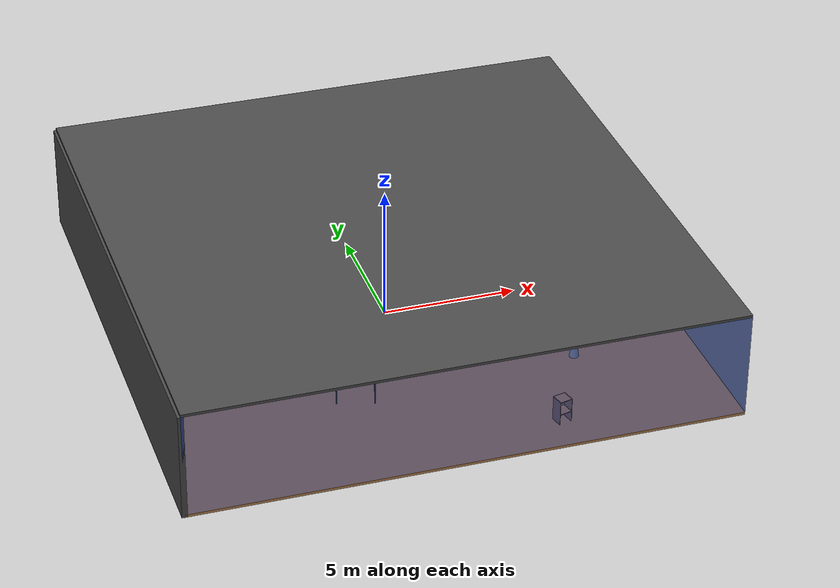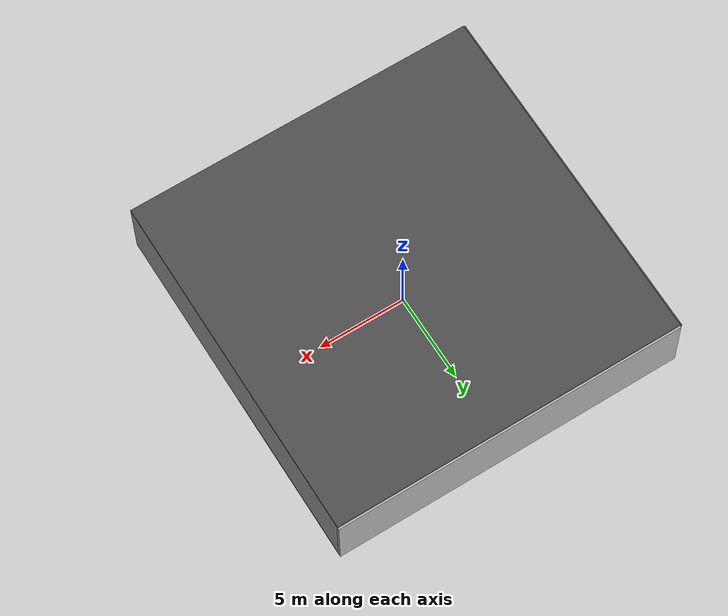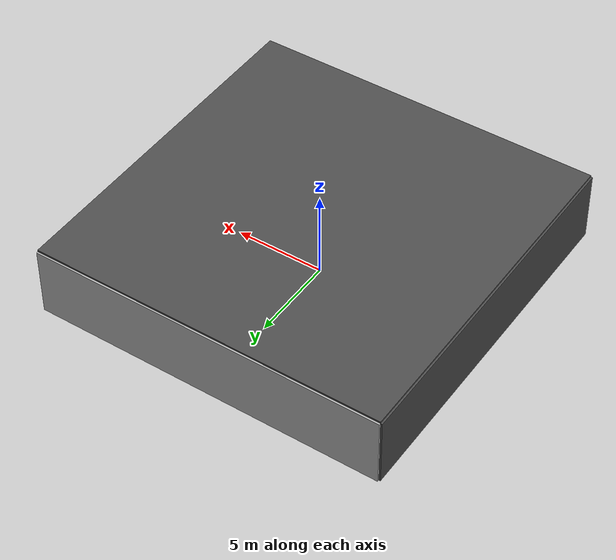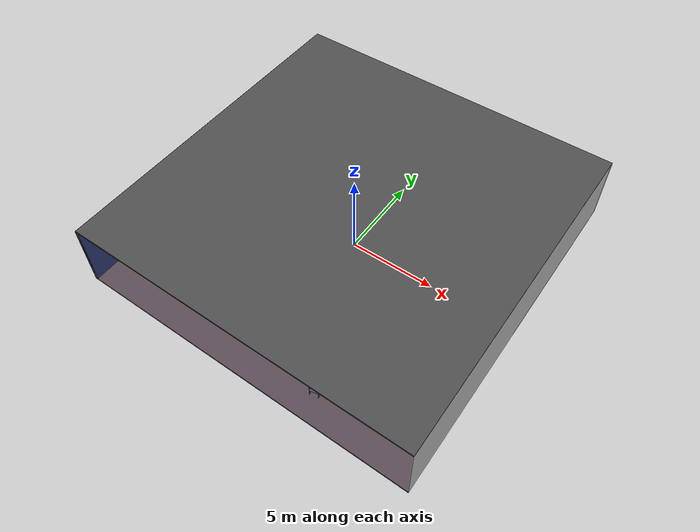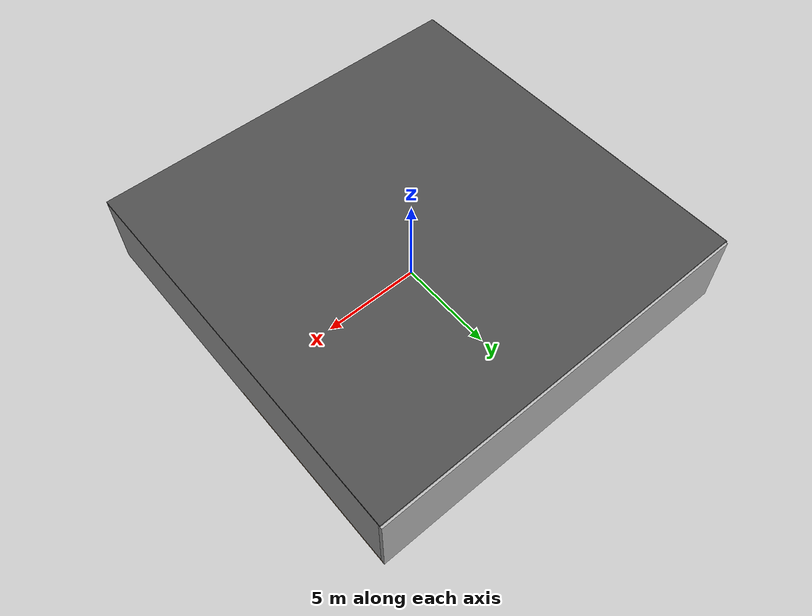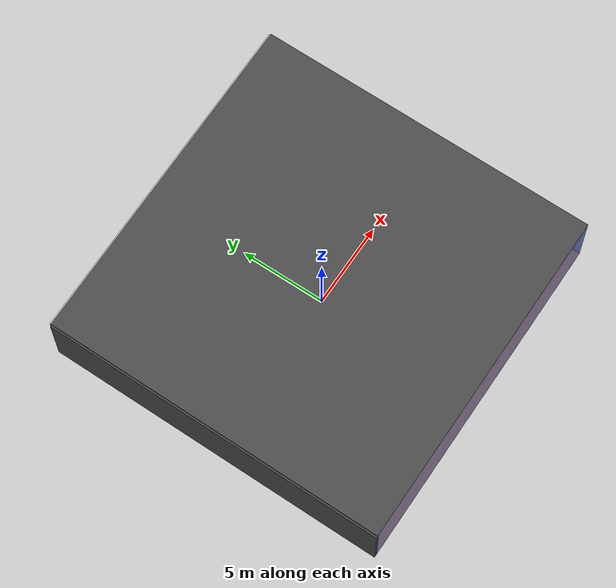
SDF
<sdf version="1.4">
 <world name="default">
  <physics type="ode">
   <max_step_size>0.001</max_step_size>
   <real_time_factor>1</real_time_factor>
   <real_time_update_rate>1000</real_time_update_rate>
   <gravity>0 0 -9.8</gravity>
  </physics>
  <scene><ambient>0.4 0.4 0.4 1</ambient><background>0.7 0.7 0.7 1</background><shadows>1</shadows></scene>
  <model name="Surrounding">
   <static>1</static>
   <link name="Ceiling">
    <collision name="Ceiling_Collision"><geometry><box><size>20 20 0.1</size></box></geometry></collision>
    <visual name="Ceiling_Visual">
     <geometry><box><size>20 20 0.1</size></box></geometry>
     <material>
      <script><uri>file://media/materials/scripts/gazebo.material</uri><name>Gazebo/DarkGrey</name></script>
     </material>
    </visual>
    <pose>0 0 4.05 0 0 0</pose>
   </link>
   <link name="Wall_South">
    <collision name="Wall_South_Collision">
     <geometry><box><size>20 0 4</size></box></geometry>
     <pose>0 0 2 0 -0 0</pose>
    </collision>
    <visual name="Wall_South_Visual">
     <pose>0 0 2 0 -0 0</pose>
     <geometry><box><size>20 0 4</size></box></geometry>
     <material>
      <script><uri>file://media/materials/scripts/gazebo.material</uri><name>Gazebo/BlueTransparent</name></script>
     </material>
    </visual>
    <velocity_decay><linear>0</linear><angular>0</angular></velocity_decay>
    <pose>0 -10 0 0 -0 0</pose>
   </link>
   <link name="Wall_East">
    <collision name="Wall_21_Collision">
     <geometry><box><size>20 0 4</size></box></geometry>
     <pose>0 0 2 0 -0 0</pose>
    </collision>
    <visual name="Wall_21_Visual">
     <pose>0 0 2 0 -0 0</pose>
     <geometry><box><size>20 0 4</size></box></geometry>
     <material>
      <script><uri>file://media/materials/scripts/gazebo.material</uri><name>Gazebo/CloudySky</name></script>
     </material>
    </visual>
    <velocity_decay><linear>0</linear><angular>0</angular></velocity_decay>
    <pose>10 0 0 0 -0 1.5708</pose>
   </link>
   <link name="Wall_North">
    <collision name="Wall_22_Collision">
     <geometry><box><size>20 0.2 4</size></box></geometry>
     <pose>0 0 2 0 -0 0</pose>
    </collision>
    <visual name="Wall_22_Visual">
     <pose>0 0 2 0 -0 0</pose>
     <geometry><box><size>20 0.2 4</size></box></geometry>
     <material>
      <script><uri>file://media/materials/scripts/gazebo.material</uri><name>Gazebo/Pioneer2Body</name></script>
     </material>
    </visual>
    <velocity_decay><linear>0</linear><angular>0</angular></velocity_decay>
    <pose>0 10 0 0 -0 0</pose>
   </link>
   <link name="Wall_West">
    <collision name="Wall_23_Collision">
     <geometry><box><size>20 0.2 4</size></box></geometry>
     <pose>0 0 2 0 -0 0</pose>
    </collision>
    <visual name="Wall_23_Visual">
     <pose>0 0 2 0 -0 0</pose>
     <geometry><box><size>20 0.2 4</size></box></geometry>
     <material>
      <script><uri>file://media/materials/scripts/gazebo.material</uri><name>Gazebo/Road</name></script>
     </material>
    </visual>
    <velocity_decay><linear>0</linear><angular>0</angular></velocity_decay>
    <pose>-10 0 0 0 0 -1.5708</pose>
   </link>
   <link name="Ground_link">
    <collision name="collision">
     <pose>0 0 .05 0 -0 0</pose>
     <geometry><box><size>20 20 0.1</size></box></geometry>
    </collision>
    <visual name="visual">
     <pose>0 0 .05 0 -0 0</pose>
     <geometry><box><size>20 20 0.1</size></box></geometry>
     <material>
      <script><uri>file://media/materials/scripts/gazebo.material</uri><name>Gazebo/WoodFloor</name></script>
     </material>
    </visual>
   </link>
   <static>1</static>
  </model>
  <spherical_coordinates>
   <surface_model>EARTH_WGS84</surface_model>
   <latitude_deg>0</latitude_deg>
   <longitude_deg>0</longitude_deg>
   <elevation>0</elevation>
   <heading_deg>0</heading_deg>
  </spherical_coordinates>
  <light name="lightball_0" type="diffuse">
   <diffuse>0.8 0.8 0.8 1</diffuse>
   <specular>0.2 0.2 0.2 1</specular>
   <attenuation>
    <range>100</range>
    <constant>0.7</constant>
    <linear>0.01</linear>
    <quadratic>0.001</quadratic>
   </attenuation>
   <direction>-0.5 0.1 -0.9</direction>
   <pose>6.96898742008 -0.996776073397 3.47034818825 0 0 0</pose>
  </light>
  <light name="lightball_1" type="diffuse">
   <diffuse>0.8 0.8 0.8 1</diffuse>
   <specular>0.2 0.2 0.2 1</specular>
   <attenuation>
    <range>100</range>
    <constant>0.7</constant>
    <linear>0.01</linear>
    <quadratic>0.001</quadratic>
   </attenuation>
   <direction>-0.5 0.1 -0.9</direction>
   <pose>9.60468905841 1.47103147191 3.16533199977 0 0 0</pose>
  </light>
  <light name="lightball_2" type="diffuse">
   <diffuse>0.8 0.8 0.8 1</diffuse>
   <specular>0.2 0.2 0.2 1</specular>
   <attenuation>
    <range>100</range>
    <constant>0.7</constant>
    <linear>0.01</linear>
    <quadratic>0.001</quadratic>
   </attenuation>
   <direction>-0.5 0.1 -0.9</direction>
   <pose>7.73381744179 6.72192613033 1.99070523238 0 0 0</pose>
  </light>
  <light name="lightball_3" type="diffuse">
   <diffuse>0.8 0.8 0.8 1</diffuse>
   <specular>0.2 0.2 0.2 1</specular>
   <attenuation>
    <range>100</range>
    <constant>0.7</constant>
    <linear>0.01</linear>
    <quadratic>0.001</quadratic>
   </attenuation>
   <direction>-0.5 0.1 -0.9</direction>
   <pose>-0.524988732317 -4.18700614677 1.17154046756 0 0 0</pose>
  </light>
  <light name="lightball_4" type="diffuse">
   <diffuse>0.8 0.8 0.8 1</diffuse>
   <specular>0.2 0.2 0.2 1</specular>
   <attenuation>
    <range>100</range>
    <constant>0.7</constant>
    <linear>0.01</linear>
    <quadratic>0.001</quadratic>
   </attenuation>
   <direction>-0.5 0.1 -0.9</direction>
   <pose>1.66390858736 -1.48197487842 2.14205144485 0 0 0</pose>
  </light>
  <light name="lightball_5" type="diffuse">
   <diffuse>0.8 0.8 0.8 1</diffuse>
   <specular>0.2 0.2 0.2 1</specular>
   <attenuation>
    <range>100</range>
    <constant>0.7</constant>
    <linear>0.01</linear>
    <quadratic>0.001</quadratic>
   </attenuation>
   <direction>-0.5 0.1 -0.9</direction>
   <pose>6.16917216234 3.11542885458 0.89863036057 0 0 0</pose>
  </light>
  <light name="lightball_6" type="diffuse">
   <diffuse>0.8 0.8 0.8 1</diffuse>
   <specular>0.2 0.2 0.2 1</specular>
   <attenuation>
    <range>100</range>
    <constant>0.7</constant>
    <linear>0.01</linear>
    <quadratic>0.001</quadratic>
   </attenuation>
   <direction>-0.5 0.1 -0.9</direction>
   <pose>1.78617406114 -0.127274884267 2.25193811076 0 0 0</pose>
  </light>
  <light name="lightball_7" type="diffuse">
   <diffuse>0.8 0.8 0.8 1</diffuse>
   <specular>0.2 0.2 0.2 1</specular>
   <attenuation>
    <range>100</range>
    <constant>0.7</constant>
    <linear>0.01</linear>
    <quadratic>0.001</quadratic>
   </attenuation>
   <direction>-0.5 0.1 -0.9</direction>
   <pose>7.27176298522 0.281904363388 3.75505067239 0 0 0</pose>
  </light>
  <include><uri>model://cabinet</uri><pose>-7.77922084954 -1.83044003546 0 0 0 2.57881987062</pose></include>
  <include><uri>model://table</uri><pose>-5.07835717342 1.54110424064 0 0 0 0.965511030621</pose></include>
  <include><uri>model://table</uri><pose>-2.66583409266 -5.12322062778 0 0 0 2.87712365861</pose></include>
  <include>
   <uri>model://robocup_3Dsim_goal</uri>
   <pose>0.832750683262 7.61897057722 0 0 0 2.68526339493</pose>
  </include>
  <include><uri>model://cabinet</uri><pose>3.76734791401 -8.54309037304 0 0 0 1.80731390598</pose></include>
  <include>
   <uri>model://construction_cone</uri>
   <pose>5.57427871279 -4.91598858748 0 0 0 1.50033843515</pose>
  </include>
  <include><uri>model://cabinet</uri><pose>5.2390631124 2.59416220384 0 0 0 2.21144018879</pose></include>
 </world>
</sdf>

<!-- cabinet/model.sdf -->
<sdf version="1.5">
  <model name="cabinet">
    <static>true</static>
    <link name="cabinet_bottom_plate">
      <inertial>
        <pose>0 0 -1 0 0 0</pose>
        <inertia>
          <ixx>2.050000</ixx>
          <ixy>0</ixy>
          <ixz>0</ixz>
          <iyy>2.050000</iyy>
          <iyz>0</iyz>
          <izz>2.050000</izz>
        </inertia>
        <mass>25.000000</mass>
      </inertial>
      <collision name="cabinet_bottom_plate_geom">
        <pose>0 0 0.010000 0 0 0</pose>
        <geometry>
          <box>
            <size>0.450000 0.450000 0.020000</size>
          </box>
        </geometry>
      </collision>
      <visual name="cabinet_bottom_plate_geom_visual">
        <pose>0 0 0.010000 0 0 0</pose>
        <geometry>
          <box>
            <size>0.450000 0.450000 0.020000</size>
          </box>
        </geometry>
        <material>
          <script>
            <uri>model://media/materials/scripts/gazebo.material</uri>
            <name>Gazebo/Wood</name>
          </script>
        </material>
      </visual>
      <collision name="cabinet_bottom_plate_geom_cabinet_back_plate">
        <pose>0.235000 0 0.510000 0 0 0</pose>
        <geometry>
          <box>
            <size>0.020000 0.450000 1.020000</size>
          </box>
        </geometry>
      </collision>
      <visual name="cabinet_bottom_plate_geom_cabinet_back_plate_visual">
        <pose>0.235000 0 0.510000 0 0 0</pose>
        <geometry>
          <box>
            <size>0.020000 0.450000 1.020000</size>
          </box>
        </geometry>
        <material>
          <script>
            <uri>model://media/materials/scripts/gazebo.material</uri>
            <name>Gazebo/Wood</name>
          </script>
        </material>
      </visual>
      <collision name="cabinet_bottom_plate_geom_cabinet_left_plate">
        <pose>0 0.235000 0.510000 0 0 0</pose>
        <geometry>
          <box>
            <size>0.450000 0.020000 1.020000</size>
          </box>
        </geometry>
      </collision>
      <visual name="cabinet_bottom_plate_geom_cabinet_left_plate_visual">
        <pose>0 0.235000 0.510000 0 0 0</pose>
        <geometry>
          <box>
            <size>0.450000 0.020000 1.020000</size>
          </box>
        </geometry>
        <material>
          <script>
            <uri>model://media/materials/scripts/gazebo.material</uri>
            <name>Gazebo/Wood</name>
          </script>
        </material>
      </visual>
      <collision name="cabinet_bottom_plate_geom_cabinet_middle_plate">
        <pose>0 0 0.510000 0 0 0</pose>
        <geometry>
          <box>
            <size>0.450000 0.450000 0.020000</size>
          </box>
        </geometry>
      </collision>
      <visual name="cabinet_bottom_plate_geom_cabinet_middle_plate_visual">
        <pose>0 0 0.510000 0 0 0</pose>
        <geometry>
          <box>
            <size>0.450000 0.450000 0.020000</size>
          </box>
        </geometry>
        <material>
          <script>
            <uri>model://media/materials/scripts/gazebo.material</uri>
            <name>Gazebo/Wood</name>
          </script>
        </material>
      </visual>
      <collision name="cabinet_bottom_plate_geom_cabinet_right_plate">
        <pose>0 -0.235000 0.510000 0 0 0</pose>
        <geometry>
          <box>
            <size>0.450000 0.020000 1.020000</size>
          </box>
        </geometry>
      </collision>
      <visual name="cabinet_bottom_plate_geom_cabinet_right_plate_visual">
        <pose>0 -0.235000 0.510000 0 0 0</pose>
        <geometry>
          <box>
            <size>0.450000 0.020000 1.020000</size>
          </box>
        </geometry>
        <material>
          <script>
            <uri>model://media/materials/scripts/gazebo.material</uri>
            <name>Gazebo/Wood</name>
          </script>
        </material>
      </visual>
      <collision name="cabinet_bottom_plate_geom_cabinet_top_plate">
        <pose>0 0 1.010000 0 0 0</pose>
        <geometry>
          <box>
            <size>0.450000 0.450000 0.020000</size>
          </box>
        </geometry>
      </collision>
      <visual name="cabinet_bottom_plate_geom_cabinet_top_plate_visual">
        <pose>0 0 1.010000 0 0 0</pose>
        <geometry>
          <box>
            <size>0.450000 0.450000 0.020000</size>
          </box>
        </geometry>
        <material>
          <script>
            <uri>model://media/materials/scripts/gazebo.material</uri>
            <name>Gazebo/Wood</name>
          </script>
        </material>
      </visual>
    </link>
  </model>
</sdf>

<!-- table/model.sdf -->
<sdf version="1.5">
  <model name="table">
    <static>true</static>
    <link name="link">
      <collision name="surface">
        <pose>0 0 1.0 0 0 0</pose>
        <geometry>
          <box>
            <size>1.5 0.8 0.03</size>
          </box>
        </geometry>
        <surface>
          <friction>
            <ode>
              <mu>0.6</mu>
              <mu2>0.6</mu2>
            </ode>
          </friction>
        </surface>
      </collision>
      <visual name="visual1">
        <pose>0 0 1.0 0 0 0</pose>
        <geometry>
          <box>
            <size>1.5 0.8 0.03</size>
          </box>
        </geometry>
        <material>
          <script>
            <uri>model://media/materials/scripts/gazebo.material</uri>
            <name>Gazebo/Wood</name>
          </script>
        </material>
      </visual>
      <collision name="front_left_leg">
        <pose>0.68 0.38 0.5 0 0 0</pose>
        <geometry>
          <cylinder>
            <radius>0.02</radius>
            <length>1.0</length>
          </cylinder>
        </geometry>
      </collision>
      <visual name="front_left_leg">
        <pose>0.68 0.38 0.5 0 0 0</pose>
        <geometry>
          <cylinder>
            <radius>0.02</radius>
            <length>1.0</length>
          </cylinder>
        </geometry>
        <material>
          <script>
            <uri>model://media/materials/scripts/gazebo.material</uri>
            <name>Gazebo/Grey</name>
          </script>
        </material>
      </visual>
      <collision name="front_right_leg">
        <pose>0.68 -0.38 0.5 0 0 0</pose>
        <geometry>
          <cylinder>
            <radius>0.02</radius>
            <length>1.0</length>
          </cylinder>
        </geometry>
      </collision>
      <visual name="front_right_leg">
        <pose>0.68 -0.38 0.5 0 0 0</pose>
        <geometry>
          <cylinder>
            <radius>0.02</radius>
            <length>1.0</length>
          </cylinder>
        </geometry>
        <material>
          <script>
            <uri>model://media/materials/scripts/gazebo.material</uri>
            <name>Gazebo/Grey</name>
          </script>
        </material>
      </visual>
      <collision name="back_right_leg">
        <pose>-0.68 -0.38 0.5 0 0 0</pose>
        <geometry>
          <cylinder>
            <radius>0.02</radius>
            <length>1.0</length>
          </cylinder>
        </geometry>
      </collision>
      <visual name="back_right_leg">
        <pose>-0.68 -0.38 0.5 0 0 0</pose>
        <geometry>
          <cylinder>
            <radius>0.02</radius>
            <length>1.0</length>
          </cylinder>
        </geometry>
        <material>
          <script>
            <uri>model://media/materials/scripts/gazebo.material</uri>
            <name>Gazebo/Grey</name>
          </script>
        </material>
      </visual>
      <collision name="back_left_leg">
        <pose>-0.68 0.38 0.5 0 0 0</pose>
        <geometry>
          <cylinder>
            <radius>0.02</radius>
            <length>1.0</length>
          </cylinder>
        </geometry>
      </collision>
      <visual name="back_left_leg">
        <pose>-0.68 0.38 0.5 0 0 0</pose>
        <geometry>
          <cylinder>
            <radius>0.02</radius>
            <length>1.0</length>
          </cylinder>
        </geometry>
        <material>
          <script>
            <uri>model://media/materials/scripts/gazebo.material</uri>
            <name>Gazebo/Grey</name>
          </script>
        </material>
      </visual>
    </link>
  </model>
</sdf>

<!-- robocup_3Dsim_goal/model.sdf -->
<sdf version="1.5">
  <model name="robocup_3d_goal">
    <static>true</static>
    <link name="left_post">
      <pose>0 1.05 0.45 0 0 0</pose>
      <collision name="collision">
        <geometry>
          <cylinder>
            <radius>0.05</radius>
            <length>0.9</length>
          </cylinder>
        </geometry>
      </collision>
      <visual name="visual">
        <geometry>
          <cylinder>
            <radius>0.05</radius>
            <length>0.9</length>
          </cylinder>
        </geometry>
        <material>
          <script>
            <uri>file://media/materials/scripts/gazebo.material</uri>
            <name>Gazebo/ZincYellow</name>
          </script>
        </material>
      </visual>
    </link>
    <link name="left_support_horiz_lower">
      <pose>0.30 1.05 0.01 0 0 0</pose>
      <collision name="collision">
        <geometry>
          <box>
            <size>0.50 0.02 0.02</size>
          </box>
        </geometry>
      </collision>
      <visual name="visual">
        <geometry>
          <box>
            <size>0.50 0.02 0.02</size>
          </box>
        </geometry>
        <material>
          <script>
            <uri>file://media/materials/scripts/gazebo.material</uri>
            <name>Gazebo/White</name>
          </script>
        </material>
      </visual>
    </link>
    <link name="left_support_horiz_upper">
      <pose>0.30 1.05 0.79 0 0 0</pose>
      <collision name="collision">
        <geometry>
          <box>
            <size>0.50 0.02 0.02</size>
          </box>
        </geometry>
      </collision>
      <visual name="visual">
        <geometry>
          <box>
            <size>0.50 0.02 0.02</size>
          </box>
        </geometry>
        <material>
          <script>
            <uri>file://media/materials/scripts/gazebo.material</uri>
            <name>Gazebo/White</name>
          </script>
        </material>
      </visual>
    </link>
    <link name="left_support_vertical">
      <pose>0.56 1.05 0.4 0 1.5708 0</pose>
      <collision name="collision">
        <geometry>
          <box>
            <size>0.80 0.02 0.02</size>
          </box>
        </geometry>
      </collision>
      <visual name="visual">
        <geometry>
          <box>
            <size>0.80 0.02 0.02</size>
          </box>
        </geometry>
        <material>
          <script>
            <uri>file://media/materials/scripts/gazebo.material</uri>
            <name>Gazebo/White</name>
          </script>
        </material>
      </visual>
    </link>
    <link name="right_support_horiz_lower">
      <pose>0.30 -1.05 0.01 0 0 0</pose>
      <collision name="collision">
        <geometry>
          <box>
            <size>0.50 0.02 0.02</size>
          </box>
        </geometry>
      </collision>
      <visual name="visual">
        <geometry>
          <box>
            <size>0.50 0.02 0.02</size>
          </box>
        </geometry>
        <material>
          <script>
            <uri>file://media/materials/scripts/gazebo.material</uri>
            <name>Gazebo/White</name>
          </script>
        </material>
      </visual>
    </link>
    <link name="right_support_horiz_upper">
      <pose>0.30 -1.05 0.79 0 0 0</pose>
      <collision name="collision">
        <geometry>
          <box>
            <size>0.50 0.02 0.02</size>
          </box>
        </geometry>
      </collision>
      <visual name="visual">
        <geometry>
          <box>
            <size>0.50 0.02 0.02</size>
          </box>
        </geometry>
        <material>
          <script>
            <uri>file://media/materials/scripts/gazebo.material</uri>
            <name>Gazebo/White</name>
          </script>
        </material>
      </visual>
    </link>
    <link name="right_support_vertical">
      <pose>0.56 -1.05 0.4 0 1.5708 0</pose>
      <collision name="collision">
        <geometry>
          <box>
            <size>0.80 0.02 0.02</size>
          </box>
        </geometry>
      </collision>
      <visual name="visual">
        <geometry>
          <box>
            <size>0.80 0.02 0.02</size>
          </box>
        </geometry>
        <material>
          <script>
            <uri>file://media/materials/scripts/gazebo.material</uri>
            <name>Gazebo/White</name>
          </script>
        </material>
      </visual>
    </link>
    <link name="center_support_horiz_lower">
      <pose>0.56 0 0.01 0 1.5708 0</pose>
      <collision name="collision">
        <geometry>
          <box>
            <size>0.02 2.08 0.02</size>
          </box>
        </geometry>
      </collision>
      <visual name="visual">
        <geometry>
          <box>
            <size>0.02 2.08 0.02</size>
          </box>
        </geometry>
        <material>
          <script>
            <uri>file://media/materials/scripts/gazebo.material</uri>
            <name>Gazebo/White</name>
          </script>
        </material>
      </visual>
    </link>
    <link name="center_support_horiz_upper">
      <pose>0.56 0 0.79 0 1.5708 0</pose>
      <collision name="collision">
        <geometry>
          <box>
            <size>0.02 2.08 0.02</size>
          </box>
        </geometry>
      </collision>
      <visual name="visual">
        <geometry>
          <box>
            <size>0.02 2.08 0.02</size>
          </box>
        </geometry>
        <material>
          <script>
            <uri>file://media/materials/scripts/gazebo.material</uri>
            <name>Gazebo/White</name>
          </script>
        </material>
      </visual>
    </link>
    <link name="right_post">
      <pose>0 -1.05 0.45 0 0 0</pose>
      <collision name="collision">
        <geometry>
          <cylinder>
            <radius>0.05</radius>
            <length>0.9</length>
          </cylinder>
        </geometry>
      </collision>
      <visual name="visual">
        <geometry>
          <cylinder>
            <radius>0.05</radius>
            <length>0.9</length>
          </cylinder>
        </geometry>
        <material>
          <script>
            <uri>file://media/materials/scripts/gazebo.material</uri>
            <name>Gazebo/ZincYellow</name>
          </script>
        </material>
      </visual>
    </link>
    <link name="crossbar">
      <pose>0 0 0.85 1.57 1.57 0</pose>
      <collision name="collision">
        <geometry>
          <cylinder>
            <radius>0.05</radius>
            <length>2.0</length>
          </cylinder>
        </geometry>
      </collision>
      <visual name="visual">
        <geometry>
          <cylinder>
            <radius>0.05</radius>
            <length>2.0</length>
          </cylinder>
        </geometry>
        <material>
          <script>
            <uri>file://media/materials/scripts/gazebo.material</uri>
            <name>Gazebo/ZincYellow</name>
          </script>
        </material>
      </visual>
    </link>
    <link name="center_net">
      <pose>0.56 0 0.40 0 0 0</pose>
      <collision name="collision">
        <geometry>
          <box>
            <size>0.01 2.1 0.80</size>
          </box>
        </geometry>
      </collision>
      <visual name="visual">
        <geometry>
          <box>
            <size>0.01 2.1 0.80</size>
          </box>
        </geometry>
        <material>
          <script>
            <uri>model://../model_source/models/robocup09_spl_field/materials/scripts/</uri>
            <uri>model://../model_source/models/robocup09_spl_field/materials/textures/</uri>
            <name>RoboCup/Net</name>
          </script>
        </material>
      </visual>
    </link>
    <link name="left_net">
      <pose>0.30 1.05 0.40 0 0 0</pose>
      <collision name="collision">
        <geometry>
          <box>
            <size>0.50 0.01 0.76</size>
          </box>
        </geometry>
      </collision>
      <visual name="visual">
        <geometry>
          <box>
            <size>0.50 0.01 0.76</size>
          </box>
        </geometry>
        <material>
          <script>
            <uri>model://../model_source/models/robocup09_spl_field/materials/scripts/</uri>
            <uri>model://../model_source/models/robocup09_spl_field/materials/textures/</uri>
            <name>RoboCup/Net</name>
          </script>
        </material>
      </visual>
    </link>
    <link name="right_net">
      <pose>0.30 -1.05 0.40 0 0 0</pose>
      <collision name="collision">
        <geometry>
          <box>
            <size>0.50 0.01 0.76</size>
          </box>
        </geometry>
      </collision>
      <visual name="visual">
        <geometry>
          <box>
            <size>0.50 0.01 0.76</size>
          </box>
        </geometry>
        <material>
          <script>
            <uri>model://../model_source/models/robocup09_spl_field/materials/scripts/</uri>
            <uri>model://../model_source/models/robocup09_spl_field/materials/textures/</uri>
            <name>RoboCup/Net</name>
          </script>
        </material>
      </visual>
    </link>
  </model>
</sdf>

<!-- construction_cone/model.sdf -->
<sdf version="1.5">
  <model name="Construction Cone">
    <link name="link">
      <collision name="collision">
        <geometry>
          <mesh>
            <scale>10 10 10</scale>
            <uri>file://isr-testbed/construction_cone/meshes/construction_cone.dae</uri>
          </mesh>
        </geometry>
      </collision>
      <visual name="visual">
        <geometry>
          <mesh>
            <scale>10 10 10</scale>
            <uri>file://isr-testbed/construction_cone/meshes/construction_cone.dae</uri>
          </mesh>
        </geometry>
      </visual>
    </link>
  </model>
</sdf>
